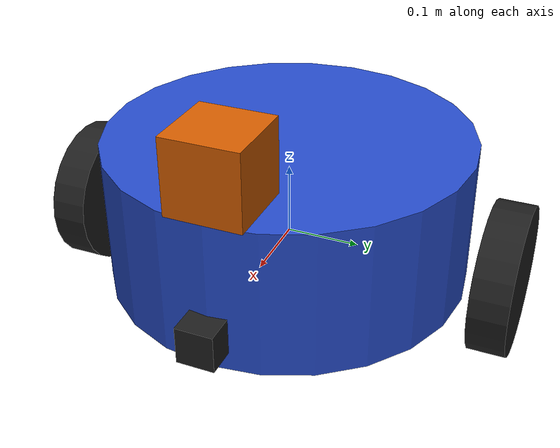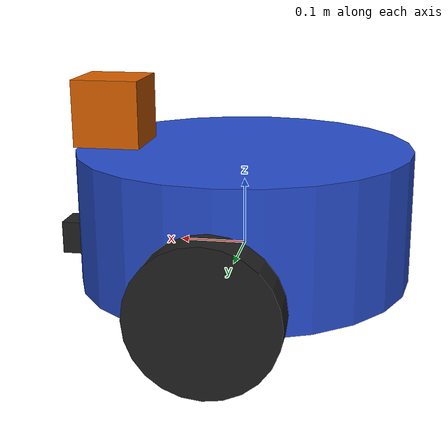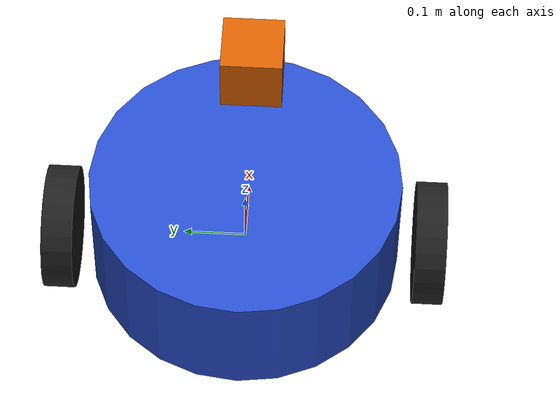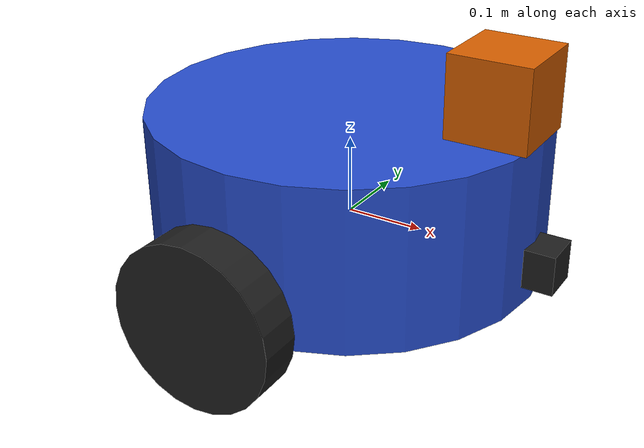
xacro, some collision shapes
<?xml version='1.0'?>

<robot name="kbot" xmlns:xacro="http://www.ros.org/wiki/xacro">

    <xacro:include filename="$(find kbot_model)/urdf/kbot.gazebo" />

    <gazebo reference="left_wheel">
        <material>Gazebo/Black</material>
    </gazebo>

    <gazebo reference="right_wheel">
        <material>Gazebo/Black</material>
    </gazebo>

    <gazebo reference="camera">
        <material>Gazebo/Black</material>
    </gazebo>

    <gazebo reference="chassis">
        <material>Gazebo/Blue</material>
    </gazebo>
    <link name="robot_footprint"></link>

    <joint name="robot_footprint_joint" type="fixed">
        <origin xyz="0 0 0" rpy="0 0 0" />
        <parent link="robot_footprint"/>
        <child link="chassis" />
    </joint>

    <joint name="camera_joint" type="fixed">
        <origin xyz="0.26 0 0" rpy="0 0 0" />
        <parent link="chassis"/>
        <child link="camera" />
        <axis xyz="0 1 0"/>
    </joint>

    <joint name="hokuyo_joint" type="fixed">
        <origin xyz="0.2 0 0.2" rpy="0 0 0" />
        <parent link="chassis"/>
        <child link="hokuyo" />
        <axis xyz="0 1 0"/>
    </joint>

    <joint type="continuous" name="left_wheel_hinge">
        <origin xyz="0 0.30 0" rpy="0 0 0" />
        <parent link="chassis"/>
        <child link="left_wheel" />
        <axis xyz="0 1 0" rpy="0 0 0" />
        <limit effort="10000" velocity="1000" />
        <dynamics damping="1.0" friction="1.0" />
    </joint>

    <joint type="continuous" name="right_wheel_hinge">
        <origin xyz="0 -0.30 0" rpy="0 0 0" />
        <parent link="chassis"/>
        <child link="right_wheel" />
        <axis xyz="0 1 0" rpy="0 0 0" />
        <limit effort="10000" velocity="1000" />
        <dynamics damping="1.0" friction="1.0" />
    </joint>

    <link name='chassis'>
        <pose>0 0 0.1 0 0 0</pose>

        <inertial>
            <mass value="15.0"/>
            <origin xyz="0.0 0 0" rpy="0 0 0"/>
            <inertia
                ixx="0.1" ixy="0" ixz="0"
                iyy="1.0" iyz="0"
                izz="0.1"
            />
        </inertial>

        <collision name='collision'>
            <origin zxy="0 0 0.05" rpy="0 0 0"/>
            <geometry>
                <cylinder radius="0.25" length="0.2"/>
            </geometry>
        </collision>

        <visual name='chassis_visual'>
            <origin xyz="0 0 0.05" rpy="0 0 0"/>
            <geometry>
                <cylinder radius="0.25" length="0.2"/>
            </geometry>
        </visual>
    </link>

    <link name="left_wheel">
        <inertial>
            <mass value="5"/>
            <origin xyz="0.0 0 0" rpy="0 1.5701 1.5707"/>
            <inertia
                ixx="0.1" ixy="0.0" ixz="0.0"
                iyy="0.1" iyz="0.0"
                izz="0.1"
            />
        </inertial>

        <collision>
            <origin xyz="0.0 0 0" rpy="0 1.5701 1.5707"/>
            <geometry>
                <cylinder radius="0.1" length="0.05"/>
            </geometry>
        </collision>

        <visual>
            <origin xyz="0.0 0 0" rpy="0 1.5701 1.5707"/>
            <geometry>
                <cylinder radius="0.1" length="0.05"/>
            </geometry>
        </visual>
    </link>

    <link name="right_wheel">
        <inertial>
            <mass value="5"/>
            <origin xyz="0.0 0 0" rpy="0 1.5701 1.5707"/>
            <inertia
                ixx="0.1" ixy="0.0" ixz="0.0"
                iyy="0.1" iyz="0.0"
                izz="0.1"
            />
        </inertial>

        <collision>
            <origin xyz="0.0 0 0" rpy="0 1.5701 1.5707"/>
            <geometry>
                <cylinder radius="0.1" length="0.05"/>
            </geometry>
        </collision>

        <visual>
            <origin xyz="0.0 0 0" rpy="0 1.5701 1.5707"/>
            <geometry>
                <cylinder radius="0.1" length="0.05"/>
            </geometry>
        </visual>
    </link>

    <link name="camera">
        <inertial>
            <mass value="0.1"/>
            <origin xyz="0 0 0" rpy="0 0 0"/>
            <inertia
                ixx="1e-6" ixy="0.0" ixz="0.0"
                iyy="1e-6" iyz="0.0"
                izz="1e-6"
            />
        </inertial>

        <collision>
            <origin xyz="0 0 0" rpy="0 0 0"/>
            <geometry>
                <box size="0.05 0.05 0.05"/>
            </geometry>
        </collision>

        <visual>
            <origin xyz="0 0 0" rpy="0 0 0"/>
            <geometry>
                <box size="0.05 0.05 0.05"/>
            </geometry>
        </visual>
    </link>

    <link name="hokuyo">
        <inertial>
            <mass value="1e-5"/>
            <origin xyz="0 0 0" rpy="0 0 0"/>
            <inertia
                ixx="1e-6" ixy="0.0" ixz="0.0"
                iyy="1e-6" iyz="0.0"
                izz="1e-6"
            />
        </inertial>

        <collision>
            <origin xyz="0 0 0" rpy="0 0 0"/>
            <geometry>
                <box size="0.1 0.1 0.1"/>
            </geometry>
        </collision>

        <visual>
            <origin xyz="0 0 0" rpy="0 0 0"/>
            <geometry>
                <mesh filename="package://kbot_model/meshes/hokuyo.dae"/>
            </geometry>
        </visual>
    </link>
</robot>
